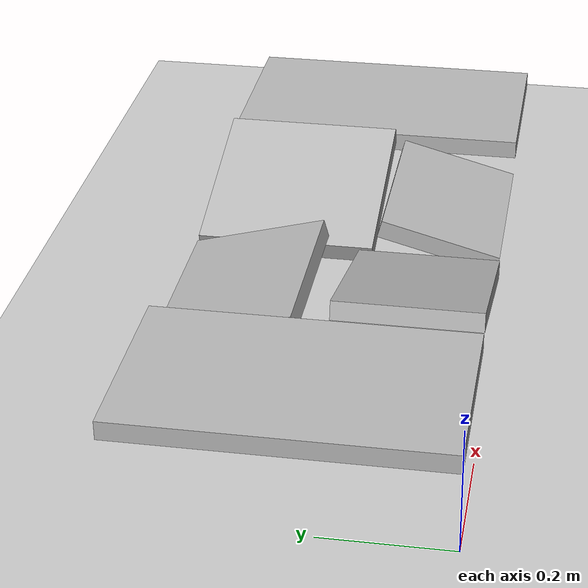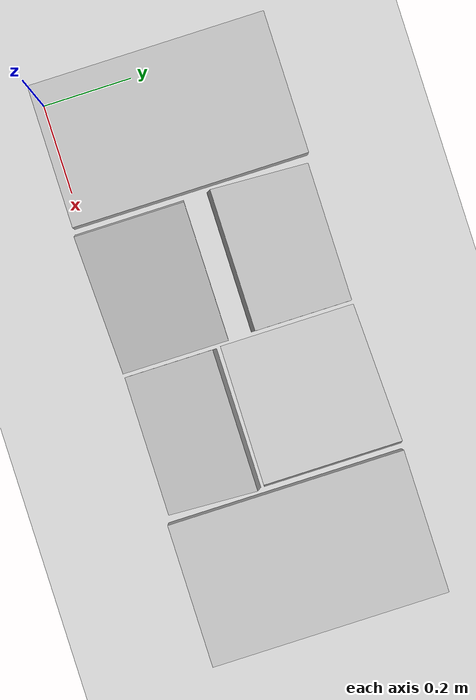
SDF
<?xml version="1.0" ?>
<sdf version="1.4">
  <world name="default">
    <physics type="ode">
      <gravity>0 0 -9.81</gravity>
      <ode>
        <solver>
          <type>quick</type>
          <iters>50</iters>
          <sor>1.4</sor>
        </solver>
        <constraints>
          <cfm>0.0</cfm>
          <erp>0.2</erp>
          <contact_max_correcting_vel>100.0</contact_max_correcting_vel>
          <contact_surface_layer>0.0</contact_surface_layer>
        </constraints>
      </ode>
      <real_time_update_rate>1000</real_time_update_rate>
      <max_step_size>0.001</max_step_size>
    </physics>
    <!-- A global light source -->
    <include>
      <uri>model://sun</uri>
    </include>
    <!-- A ground plane -->
    <include>
      <uri>model://ground_plane</uri>
    </include>

    <model name="box_1_model">
      <pose>0.15 0.25 0.145 0 0 0</pose>
      <static>true</static>
      <link name="box_1_body">
        <inertial>
          <mass>1.0</mass>
          <inertia>
            <ixx>1.0</ixx>
            <ixy>0.0</ixy>
            <ixz>0.0</ixz>
            <iyy>1.0</iyy>
            <iyz>0.0</iyz>
            <izz>1.0</izz>
          </inertia>
        </inertial>
        <collision name="collision">
          <geometry>
            <box>
              <size>0.3 0.5 0.03</size>
            </box>
          </geometry>
        </collision>
        <visual name="visual">
          <geometry>
            <box>
              <size>0.3 0.5 0.03</size>
            </box>
          </geometry>
        </visual>
      </link>
    </model>

    <model name="box_2_model">
      <pose>0.46 0.39 0.112 -0.261799 0 0</pose>
      <static>true</static>
      <link name="box_1_body">
        <inertial>
          <mass>1.0</mass>
          <inertia>
            <ixx>1.0</ixx>
            <ixy>0.0</ixy>
            <ixz>0.0</ixz>
            <iyy>1.0</iyy>
            <iyz>0.0</iyz>
            <izz>1.0</izz>
          </inertia>
        </inertial>
        <collision name="collision">
          <geometry>
            <box>
              <size>0.3 0.22 0.03</size>
            </box>
          </geometry>
        </collision>
        <visual name="visual">
          <geometry>
            <box>
              <size>0.3 0.22 0.03</size>
            </box>
          </geometry>
        </visual>
      </link>
    </model>

    <model name="box_3_model">
      <pose>0.463 0.115 0.1277 0 0.261799 0</pose>
      <static>true</static>
      <link name="box_1_body">
        <inertial>
          <mass>1.0</mass>
          <inertia>
            <ixx>1.0</ixx>
            <ixy>0.0</ixy>
            <ixz>0.0</ixz>
            <iyy>1.0</iyy>
            <iyz>0.0</iyz>
            <izz>1.0</izz>
          </inertia>
        </inertial>
        <collision name="collision">
          <geometry>
            <box>
              <size>0.3 0.23 0.03</size>
            </box>
          </geometry>
        </collision>
        <visual name="visual">
          <geometry>
            <box>
              <size>0.3 0.23 0.03</size>
            </box>
          </geometry>
        </visual>
      </link>
    </model>

    <model name="box_4_model">
      <pose>0.767 0.355 0.1277 0 -0.261799 0</pose>
      <static>true</static>
      <link name="box_1_body">
        <inertial>
          <mass>1.0</mass>
          <inertia>
            <ixx>1.0</ixx>
            <ixy>0.0</ixy>
            <ixz>0.0</ixz>
            <iyy>1.0</iyy>
            <iyz>0.0</iyz>
            <izz>1.0</izz>
          </inertia>
        </inertial>
        <collision name="collision">
          <geometry>
            <box>
              <size>0.3 0.29 0.03</size>
            </box>
          </geometry>
        </collision>
        <visual name="visual">
          <geometry>
            <box>
              <size>0.3 0.29 0.03</size>
            </box>
          </geometry>
        </visual>
      </link>
    </model>

    <model name="box_5_model">
      <pose>0.77 0.10147 0.1144 0.261799 0 0</pose>
      <static>true</static>
      <link name="box_1_body">
        <inertial>
          <mass>1.0</mass>
          <inertia>
            <ixx>1.0</ixx>
            <ixy>0.0</ixy>
            <ixz>0.0</ixz>
            <iyy>1.0</iyy>
            <iyz>0.0</iyz>
            <izz>1.0</izz>
          </inertia>
        </inertial>
        <collision name="collision">
          <geometry>
            <box>
              <size>0.3 0.2 0.03</size>
            </box>
          </geometry>
        </collision>
        <visual name="visual">
          <geometry>
            <box>
              <size>0.3 0.2 0.03</size>
            </box>
          </geometry>
        </visual>
      </link>
    </model>

    <model name="box_6_model">
      <pose>1.08 0.25 0.145 0 0 0</pose>
      <static>true</static>
      <link name="box_1_body">
        <inertial>
          <mass>1.0</mass>
          <inertia>
            <ixx>1.0</ixx>
            <ixy>0.0</ixy>
            <ixz>0.0</ixz>
            <iyy>1.0</iyy>
            <iyz>0.0</iyz>
            <izz>1.0</izz>
          </inertia>
        </inertial>
        <collision name="collision">
          <geometry>
            <box>
              <size>0.3 0.5 0.03</size>
            </box>
          </geometry>
        </collision>
        <visual name="visual">
          <geometry>
            <box>
              <size>0.3 0.5 0.03</size>
            </box>
          </geometry>
        </visual>
      </link>
    </model>

  </world>
</sdf>
